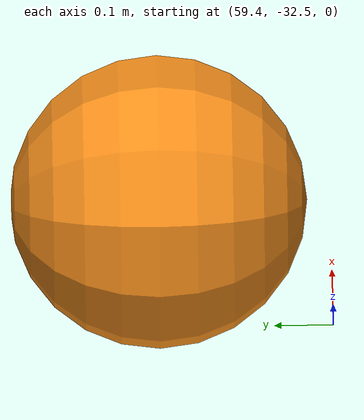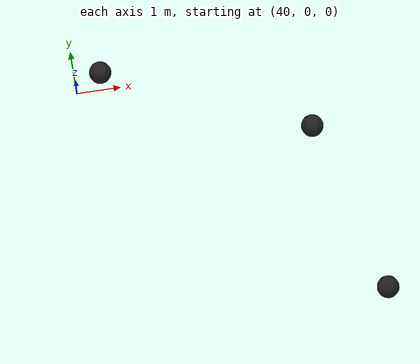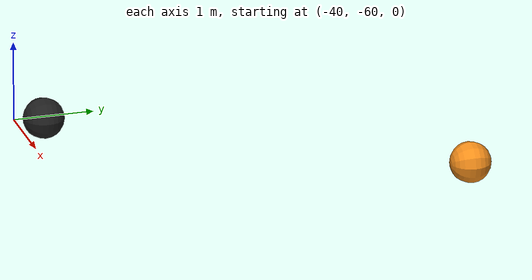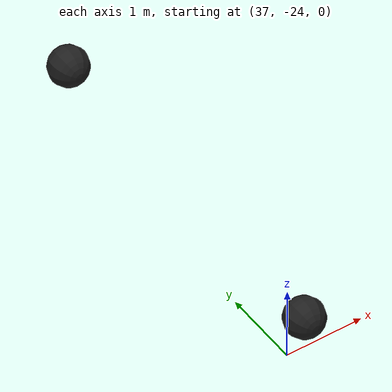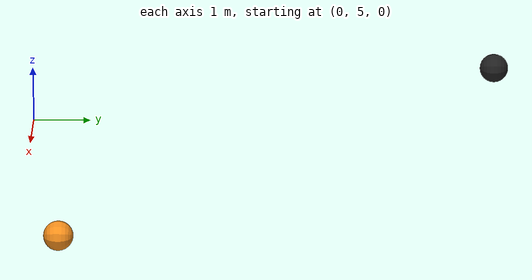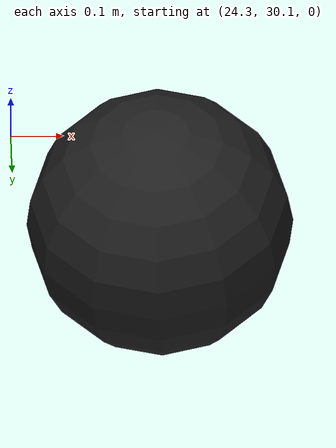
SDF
<?xml version="1.0"?>
<sdf version="1.6">
  <model name="robotx_obstacle_course">
    <include>
      <name>mb_round_buoy_black_0</name>
      <pose>56.84848062 59.2614612521 0.0 0 0 0 </pose>
      <uri>https://fuel.gazebosim.org/1.0/openrobotics/models/mb_round_buoy_black</uri>
      <plugin name="vrx::PolyhedraBuoyancyDrag"
              filename="libPolyhedraBuoyancyDrag.so">
        <fluid_density>1000</fluid_density>
        <fluid_level>0.0</fluid_level>
        <linear_drag>25.0</linear_drag>
        <angular_drag>2.0</angular_drag>
        <buoyancy name="collision_outer">
          <link_name>link</link_name>
          <pose>0 0 0 0 0 0</pose>
          <geometry>
            <sphere>
              <radius>0.25</radius>
          </sphere>
          </geometry>
        </buoyancy>
        <wavefield>
          <size>1000 1000</size>
          <cell_count>50 50></cell_count>
          <wave>
            <model>PMS</model>
            <period>5.0</period>
            <number>3</number>
            <scale>1.1</scale>
            <gain>0.3</gain>
            <direction>1 0</direction>
            <angle>0.4</angle>
            <tau>2.0</tau>
            <amplitude>0.0</amplitude>
            <steepness>0.0</steepness>
          </wave>
        </wavefield>
      </plugin>
    </include>

    <include>
      <name>mb_round_buoy_black_1</name>
      <pose>56.9804067204 8.39663411782 0.0 0 0 0 </pose>
      <uri>https://fuel.gazebosim.org/1.0/openrobotics/models/mb_round_buoy_black</uri>
      <plugin name="vrx::PolyhedraBuoyancyDrag"
              filename="libPolyhedraBuoyancyDrag.so">
        <fluid_density>1000</fluid_density>
        <fluid_level>0.0</fluid_level>
        <linear_drag>25.0</linear_drag>
        <angular_drag>2.0</angular_drag>
        <buoyancy name="collision_outer">
          <link_name>link</link_name>
          <pose>0 0 0 0 0 0</pose>
          <geometry>
            <sphere>
              <radius>0.25</radius>
          </sphere>
          </geometry>
        </buoyancy>
        <wavefield>
          <size>1000 1000</size>
          <cell_count>50 50></cell_count>
          <wave>
            <model>PMS</model>
            <period>5.0</period>
            <number>3</number>
            <scale>1.1</scale>
            <gain>0.3</gain>
            <direction>1 0</direction>
            <angle>0.4</angle>
            <tau>2.0</tau>
            <amplitude>0.0</amplitude>
            <steepness>0.0</steepness>
          </wave>
        </wavefield>
      </plugin>
    </include>

    <include>
      <name>mb_round_buoy_black_2</name>
      <pose>-39.9569402425 -59.6380114707 0.0 0 0 0 </pose>
      <uri>https://fuel.gazebosim.org/1.0/openrobotics/models/mb_round_buoy_black</uri>
      <plugin name="vrx::PolyhedraBuoyancyDrag"
              filename="libPolyhedraBuoyancyDrag.so">
        <fluid_density>1000</fluid_density>
        <fluid_level>0.0</fluid_level>
        <linear_drag>25.0</linear_drag>
        <angular_drag>2.0</angular_drag>
        <buoyancy name="collision_outer">
          <link_name>link</link_name>
          <pose>0 0 0 0 0 0</pose>
          <geometry>
            <sphere>
              <radius>0.25</radius>
          </sphere>
          </geometry>
        </buoyancy>
        <wavefield>
          <size>1000 1000</size>
          <cell_count>50 50></cell_count>
          <wave>
            <model>PMS</model>
            <period>5.0</period>
            <number>3</number>
            <scale>1.1</scale>
            <gain>0.3</gain>
            <direction>1 0</direction>
            <angle>0.4</angle>
            <tau>2.0</tau>
            <amplitude>0.0</amplitude>
            <steepness>0.0</steepness>
          </wave>
        </wavefield>
      </plugin>
    </include>

    <include>
      <name>mb_round_buoy_black_3</name>
      <pose>40.5935528521 0.420855757631 0.0 0 0 0 </pose>
      <uri>https://fuel.gazebosim.org/1.0/openrobotics/models/mb_round_buoy_black</uri>
      <plugin name="vrx::PolyhedraBuoyancyDrag"
              filename="libPolyhedraBuoyancyDrag.so">
        <fluid_density>1000</fluid_density>
        <fluid_level>0.0</fluid_level>
        <linear_drag>25.0</linear_drag>
        <angular_drag>2.0</angular_drag>
        <buoyancy name="collision_outer">
          <link_name>link</link_name>
          <pose>0 0 0 0 0 0</pose>
          <geometry>
            <sphere>
              <radius>0.25</radius>
          </sphere>
          </geometry>
        </buoyancy>
        <wavefield>
          <size>1000 1000</size>
          <cell_count>50 50></cell_count>
          <wave>
            <model>PMS</model>
            <period>5.0</period>
            <number>3</number>
            <scale>1.1</scale>
            <gain>0.3</gain>
            <direction>1 0</direction>
            <angle>0.4</angle>
            <tau>2.0</tau>
            <amplitude>0.0</amplitude>
            <steepness>0.0</steepness>
          </wave>
        </wavefield>
      </plugin>
    </include>

    <include>
      <name>mb_round_buoy_black_4</name>
      <pose>45.1471787907 -1.58774897319 0.0 0 0 0 </pose>
      <uri>https://fuel.gazebosim.org/1.0/openrobotics/models/mb_round_buoy_black</uri>
      <plugin name="vrx::PolyhedraBuoyancyDrag"
              filename="libPolyhedraBuoyancyDrag.so">
        <fluid_density>1000</fluid_density>
        <fluid_level>0.0</fluid_level>
        <linear_drag>25.0</linear_drag>
        <angular_drag>2.0</angular_drag>
        <buoyancy name="collision_outer">
          <link_name>link</link_name>
          <pose>0 0 0 0 0 0</pose>
          <geometry>
            <sphere>
              <radius>0.25</radius>
          </sphere>
          </geometry>
        </buoyancy>
        <wavefield>
          <size>1000 1000</size>
          <cell_count>50 50></cell_count>
          <wave>
            <model>PMS</model>
            <period>5.0</period>
            <number>3</number>
            <scale>1.1</scale>
            <gain>0.3</gain>
            <direction>1 0</direction>
            <angle>0.4</angle>
            <tau>2.0</tau>
            <amplitude>0.0</amplitude>
            <steepness>0.0</steepness>
          </wave>
        </wavefield>
      </plugin>
    </include>

    <include>
      <name>mb_round_buoy_black_5</name>
      <pose>37.4966413916 -23.6251778906 0.0 0 0 0 </pose>
      <uri>https://fuel.gazebosim.org/1.0/openrobotics/models/mb_round_buoy_black</uri>
      <plugin name="vrx::PolyhedraBuoyancyDrag"
              filename="libPolyhedraBuoyancyDrag.so">
        <fluid_density>1000</fluid_density>
        <fluid_level>0.0</fluid_level>
        <linear_drag>25.0</linear_drag>
        <angular_drag>2.0</angular_drag>
        <buoyancy name="collision_outer">
          <link_name>link</link_name>
          <pose>0 0 0 0 0 0</pose>
          <geometry>
            <sphere>
              <radius>0.25</radius>
          </sphere>
          </geometry>
        </buoyancy>
        <wavefield>
          <size>1000 1000</size>
          <cell_count>50 50></cell_count>
          <wave>
            <model>PMS</model>
            <period>5.0</period>
            <number>3</number>
            <scale>1.1</scale>
            <gain>0.3</gain>
            <direction>1 0</direction>
            <angle>0.4</angle>
            <tau>2.0</tau>
            <amplitude>0.0</amplitude>
            <steepness>0.0</steepness>
          </wave>
        </wavefield>
      </plugin>
    </include>

    <include>
      <name>mb_round_buoy_black_6</name>
      <pose>46.2135293014 -5.59469145311 0.0 0 0 0 </pose>
      <uri>https://fuel.gazebosim.org/1.0/openrobotics/models/mb_round_buoy_black</uri>
      <plugin name="vrx::PolyhedraBuoyancyDrag"
              filename="libPolyhedraBuoyancyDrag.so">
        <fluid_density>1000</fluid_density>
        <fluid_level>0.0</fluid_level>
        <linear_drag>25.0</linear_drag>
        <angular_drag>2.0</angular_drag>
        <buoyancy name="collision_outer">
          <link_name>link</link_name>
          <pose>0 0 0 0 0 0</pose>
          <geometry>
            <sphere>
              <radius>0.25</radius>
          </sphere>
          </geometry>
        </buoyancy>
        <wavefield>
          <size>1000 1000</size>
          <cell_count>50 50></cell_count>
          <wave>
            <model>PMS</model>
            <period>5.0</period>
            <number>3</number>
            <scale>1.1</scale>
            <gain>0.3</gain>
            <direction>1 0</direction>
            <angle>0.4</angle>
            <tau>2.0</tau>
            <amplitude>0.0</amplitude>
            <steepness>0.0</steepness>
          </wave>
        </wavefield>
      </plugin>
    </include>

    <include>
      <name>mb_round_buoy_black_7</name>
      <pose>24.576913737 30.3481238647 0.0 0 0 0 </pose>
      <uri>https://fuel.gazebosim.org/1.0/openrobotics/models/mb_round_buoy_black</uri>
      <plugin name="vrx::PolyhedraBuoyancyDrag"
              filename="libPolyhedraBuoyancyDrag.so">
        <fluid_density>1000</fluid_density>
        <fluid_level>0.0</fluid_level>
        <linear_drag>25.0</linear_drag>
        <angular_drag>2.0</angular_drag>
        <buoyancy name="collision_outer">
          <link_name>link</link_name>
          <pose>0 0 0 0 0 0</pose>
          <geometry>
            <sphere>
              <radius>0.25</radius>
          </sphere>
          </geometry>
        </buoyancy>
        <wavefield>
          <size>1000 1000</size>
          <cell_count>50 50></cell_count>
          <wave>
            <model>PMS</model>
            <period>5.0</period>
            <number>3</number>
            <scale>1.1</scale>
            <gain>0.3</gain>
            <direction>1 0</direction>
            <angle>0.4</angle>
            <tau>2.0</tau>
            <amplitude>0.0</amplitude>
            <steepness>0.0</steepness>
          </wave>
        </wavefield>
      </plugin>
    </include>

    <include>
      <name>mb_round_buoy_black_8</name>
      <pose>37.5737439619 -18.8335819857 0.0 0 0 0 </pose>
      <uri>https://fuel.gazebosim.org/1.0/openrobotics/models/mb_round_buoy_black</uri>
      <plugin name="vrx::PolyhedraBuoyancyDrag"
              filename="libPolyhedraBuoyancyDrag.so">
        <fluid_density>1000</fluid_density>
        <fluid_level>0.0</fluid_level>
        <linear_drag>25.0</linear_drag>
        <angular_drag>2.0</angular_drag>
        <buoyancy name="collision_outer">
          <link_name>link</link_name>
          <pose>0 0 0 0 0 0</pose>
          <geometry>
            <sphere>
              <radius>0.25</radius>
          </sphere>
          </geometry>
        </buoyancy>
        <wavefield>
          <size>1000 1000</size>
          <cell_count>50 50></cell_count>
          <wave>
            <model>PMS</model>
            <period>5.0</period>
            <number>3</number>
            <scale>1.1</scale>
            <gain>0.3</gain>
            <direction>1 0</direction>
            <angle>0.4</angle>
            <tau>2.0</tau>
            <amplitude>0.0</amplitude>
            <steepness>0.0</steepness>
          </wave>
        </wavefield>
      </plugin>
    </include>

    <include>
      <name>mb_round_buoy_black_9</name>
      <pose>-2.49572219989 13.1619102364 0.0 0 0 0 </pose>
      <uri>https://fuel.gazebosim.org/1.0/openrobotics/models/mb_round_buoy_black</uri>
      <plugin name="vrx::PolyhedraBuoyancyDrag"
              filename="libPolyhedraBuoyancyDrag.so">
        <fluid_density>1000</fluid_density>
        <fluid_level>0.0</fluid_level>
        <linear_drag>25.0</linear_drag>
        <angular_drag>2.0</angular_drag>
        <buoyancy name="collision_outer">
          <link_name>link</link_name>
          <pose>0 0 0 0 0 0</pose>
          <geometry>
            <sphere>
              <radius>0.25</radius>
          </sphere>
          </geometry>
        </buoyancy>
        <wavefield>
          <size>1000 1000</size>
          <cell_count>50 50></cell_count>
          <wave>
            <model>PMS</model>
            <period>5.0</period>
            <number>3</number>
            <scale>1.1</scale>
            <gain>0.3</gain>
            <direction>1 0</direction>
            <angle>0.4</angle>
            <tau>2.0</tau>
            <amplitude>0.0</amplitude>
            <steepness>0.0</steepness>
          </wave>
        </wavefield>
      </plugin>
    </include>

    <include>
      <name>mb_round_buoy_orange_0</name>
      <pose>59.628595207 -32.2043953768 0.0 0 0 0 </pose>
      <uri>https://fuel.gazebosim.org/1.0/openrobotics/models/mb_round_buoy_orange</uri>
      <plugin name="vrx::PolyhedraBuoyancyDrag"
              filename="libPolyhedraBuoyancyDrag.so">
        <fluid_density>1000</fluid_density>
        <fluid_level>0.0</fluid_level>
        <linear_drag>25.0</linear_drag>
        <angular_drag>2.0</angular_drag>
        <buoyancy name="collision_outer">
          <link_name>link</link_name>
          <pose>0 0 0 0 0 0</pose>
          <geometry>
            <sphere>
              <radius>0.25</radius>
          </sphere>
          </geometry>
        </buoyancy>
        <wavefield>
          <size>1000 1000</size>
          <cell_count>50 50></cell_count>
          <wave>
            <model>PMS</model>
            <period>5.0</period>
            <number>3</number>
            <scale>1.1</scale>
            <gain>0.3</gain>
            <direction>1 0</direction>
            <angle>0.4</angle>
            <tau>2.0</tau>
            <amplitude>0.0</amplitude>
            <steepness>0.0</steepness>
          </wave>
        </wavefield>
      </plugin>
    </include>

    <include>
      <name>mb_round_buoy_orange_1</name>
      <pose>51.0184408248 -44.8771143523 0.0 0 0 0 </pose>
      <plugin name="vrx::PolyhedraBuoyancyDrag"
              filename="libPolyhedraBuoyancyDrag.so">
        <fluid_density>1000</fluid_density>
        <fluid_level>0.0</fluid_level>
        <linear_drag>25.0</linear_drag>
        <angular_drag>2.0</angular_drag>
        <buoyancy name="collision_outer">
          <link_name>link</link_name>
          <pose>0 0 0 0 0 0</pose>
          <geometry>
            <sphere>
              <radius>0.25</radius>
          </sphere>
          </geometry>
        </buoyancy>
        <wavefield>
          <size>1000 1000</size>
          <cell_count>50 50></cell_count>
          <wave>
            <model>PMS</model>
            <period>5.0</period>
            <number>3</number>
            <scale>1.1</scale>
            <gain>0.3</gain>
            <direction>1 0</direction>
            <angle>0.4</angle>
            <tau>2.0</tau>
            <amplitude>0.0</amplitude>
            <steepness>0.0</steepness>
          </wave>
        </wavefield>
      </plugin>
      <uri>https://fuel.gazebosim.org/1.0/openrobotics/models/mb_round_buoy_orange</uri>
    </include>

    <include>
      <name>mb_round_buoy_orange_2</name>
      <pose>-37.1237799886 -55.0780758672 0.0 0 0 0 </pose>
      <uri>https://fuel.gazebosim.org/1.0/openrobotics/models/mb_round_buoy_orange</uri>
      <plugin name="vrx::PolyhedraBuoyancyDrag"
              filename="libPolyhedraBuoyancyDrag.so">
        <fluid_density>1000</fluid_density>
        <fluid_level>0.0</fluid_level>
        <linear_drag>25.0</linear_drag>
        <angular_drag>2.0</angular_drag>
        <buoyancy name="collision_outer">
          <link_name>link</link_name>
          <pose>0 0 0 0 0 0</pose>
          <geometry>
            <sphere>
              <radius>0.25</radius>
          </sphere>
          </geometry>
        </buoyancy>
        <wavefield>
          <size>1000 1000</size>
          <cell_count>50 50></cell_count>
          <wave>
            <model>PMS</model>
            <period>5.0</period>
            <number>3</number>
            <scale>1.1</scale>
            <gain>0.3</gain>
            <direction>1 0</direction>
            <angle>0.4</angle>
            <tau>2.0</tau>
            <amplitude>0.0</amplitude>
            <steepness>0.0</steepness>
          </wave>
        </wavefield>
      </plugin>
    </include>

    <include>
      <name>mb_round_buoy_orange_3</name>
      <pose>4.82024240714 5.70282780335 0.0 0 0 0 </pose>
      <uri>https://fuel.gazebosim.org/1.0/openrobotics/models/mb_round_buoy_orange</uri>
      <plugin name="vrx::PolyhedraBuoyancyDrag"
              filename="libPolyhedraBuoyancyDrag.so">
        <fluid_density>1000</fluid_density>
        <fluid_level>0.0</fluid_level>
        <linear_drag>25.0</linear_drag>
        <angular_drag>2.0</angular_drag>
        <buoyancy name="collision_outer">
          <link_name>link</link_name>
          <pose>0 0 0 0 0 0</pose>
          <geometry>
            <sphere>
              <radius>0.25</radius>
          </sphere>
          </geometry>
        </buoyancy>
        <wavefield>
          <size>1000 1000</size>
          <cell_count>50 50></cell_count>
          <wave>
            <model>PMS</model>
            <period>5.0</period>
            <number>3</number>
            <scale>1.1</scale>
            <gain>0.3</gain>
            <direction>1 0</direction>
            <angle>0.4</angle>
            <tau>2.0</tau>
            <amplitude>0.0</amplitude>
            <steepness>0.0</steepness>
          </wave>
        </wavefield>
      </plugin>
    </include>

    <include>
      <name>mb_round_buoy_orange_4</name>
      <pose>-10.7269893388 -31.6245175746 0.0 0 0 0 </pose>
      <uri>https://fuel.gazebosim.org/1.0/openrobotics/models/mb_round_buoy_orange</uri>
      <plugin name="vrx::PolyhedraBuoyancyDrag"
              filename="libPolyhedraBuoyancyDrag.so">
        <fluid_density>1000</fluid_density>
        <fluid_level>0.0</fluid_level>
        <linear_drag>25.0</linear_drag>
        <angular_drag>2.0</angular_drag>
        <buoyancy name="collision_outer">
          <link_name>link</link_name>
          <pose>0 0 0 0 0 0</pose>
          <geometry>
            <sphere>
              <radius>0.25</radius>
          </sphere>
          </geometry>
        </buoyancy>
        <wavefield>
          <size>1000 1000</size>
          <cell_count>50 50></cell_count>
          <wave>
            <model>PMS</model>
            <period>5.0</period>
            <number>3</number>
            <scale>1.1</scale>
            <gain>0.3</gain>
            <direction>1 0</direction>
            <angle>0.4</angle>
            <tau>2.0</tau>
            <amplitude>0.0</amplitude>
            <steepness>0.0</steepness>
          </wave>
        </wavefield>
      </plugin>
    </include>

  </model>
</sdf>

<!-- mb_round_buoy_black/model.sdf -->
<sdf version="1.6">
  <model name="mb_round_buoy_black">
    <link name="link">
      <inertial>
        <pose>0 0 -2 0 0 0</pose>
        <!-- Mass determined based on buoyancy geometry so object
             floats at mid-point of sphere -->
        <mass>3.5</mass>
        <!-- Mark only - based on cylinder -->
        <inertia>
          <ixx>1.0</ixx>
          <ixy>0</ixy>
          <ixz>0</ixz>
          <iyy>1.0</iyy>
          <iyz>0</iyz>
          <izz>0.1</izz>
        </inertia>
      </inertial>
      <collision name="collision">
        <geometry>
          <sphere>
            <radius>0.25</radius>
          </sphere>
        </geometry>
      </collision>
      <visual name="visual">
        <geometry>
	        <mesh><uri>model://mb_round_buoy_orange/meshes/mb_round_buoy.dae</uri></mesh>
        </geometry>
        <material>
          <script>
            <uri>file://media/materials/scripts/gazebo.material</uri>
            <name>Gazebo/Black</name>
          </script>
        </material>
      </visual>
    </link>
    <plugin name="BuoyancyPlugin" filename="libbuoyancy_gazebo_plugin.so">
      <wave_model>ocean_waves</wave_model>
      <fluid_density>1000</fluid_density>
      <fluid_level>0.0</fluid_level>
      <linear_drag>25.0</linear_drag>
      <angular_drag>2.0</angular_drag>
      <buoyancy name="buoyancy_sphere">
        <link_name>link</link_name>
        <pose>0 0 0.02 0 0 0</pose>
        <geometry>
          <sphere>
            <radius>0.235</radius>
          </sphere>
        </geometry>
      </buoyancy>
    </plugin>
  </model>
</sdf>

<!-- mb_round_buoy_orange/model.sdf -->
<sdf version="1.6">
  <model name="mb_round_buoy_orange">
    <link name="link">
      <inertial>
        <pose>0 0 -2 0 0 0</pose>
        <!-- Mass determined based on buoyancy geometry so object
             floats at mid-point of sphere -->
        <mass>3.5</mass>
        <!-- Mark only - based on cylinder -->
        <inertia>
          <ixx>1.0</ixx>
          <ixy>0</ixy>
          <ixz>0</ixz>
          <iyy>1.0</iyy>
          <iyz>0</iyz>
          <izz>0.1</izz>
        </inertia>
      </inertial>
      <collision name="collision">
        <geometry>
          <sphere>
            <radius>0.25</radius>
          </sphere>
        </geometry>
      </collision>
      <visual name="visual">
        <geometry>
	        <mesh><uri>model://mb_round_buoy_orange/meshes/mb_round_buoy.dae</uri></mesh>
        </geometry>
        <material>
          <script>
            <uri>model://mb_round_buoy_orange/materials/scripts/mb_round_buoy.material</uri>
            <name>mb_round_buoy/Orange</name>
          </script>
        </material>
      </visual>
    </link>
    <plugin name="BuoyancyPlugin" filename="libbuoyancy_gazebo_plugin.so">
      <wave_model>ocean_waves</wave_model>
      <fluid_density>1000</fluid_density>
      <fluid_level>0.0</fluid_level>
      <linear_drag>25.0</linear_drag>
      <angular_drag>2.0</angular_drag>
      <buoyancy name="buoyancy_sphere">
        <link_name>link</link_name>
        <pose>0 0 0.02 0 0 0</pose>
        <geometry>
          <sphere>
            <radius>0.235</radius>
          </sphere>
        </geometry>
      </buoyancy>
    </plugin>
  </model>
</sdf>
